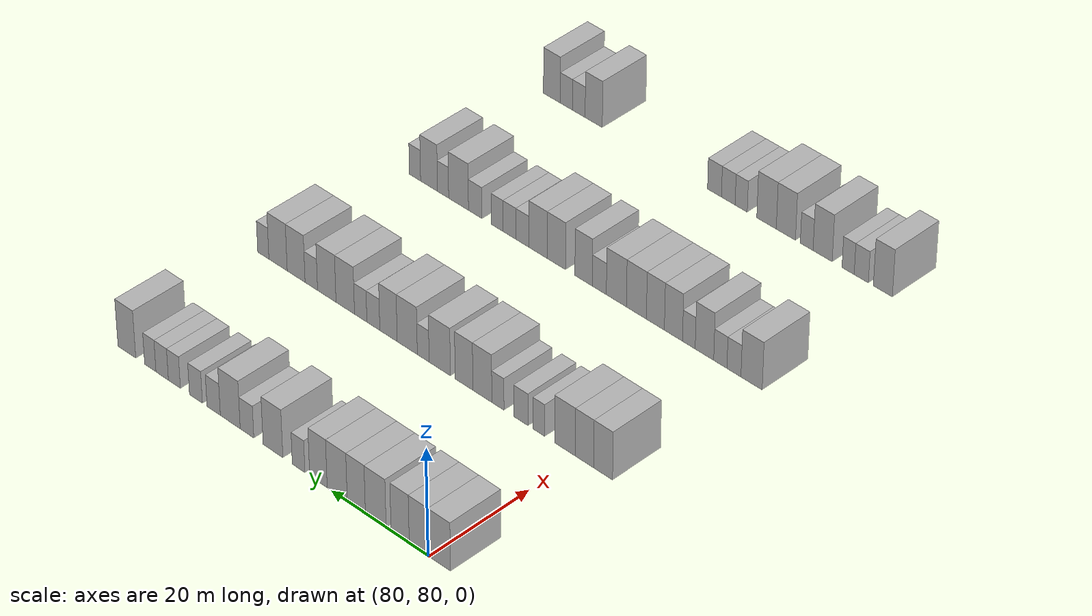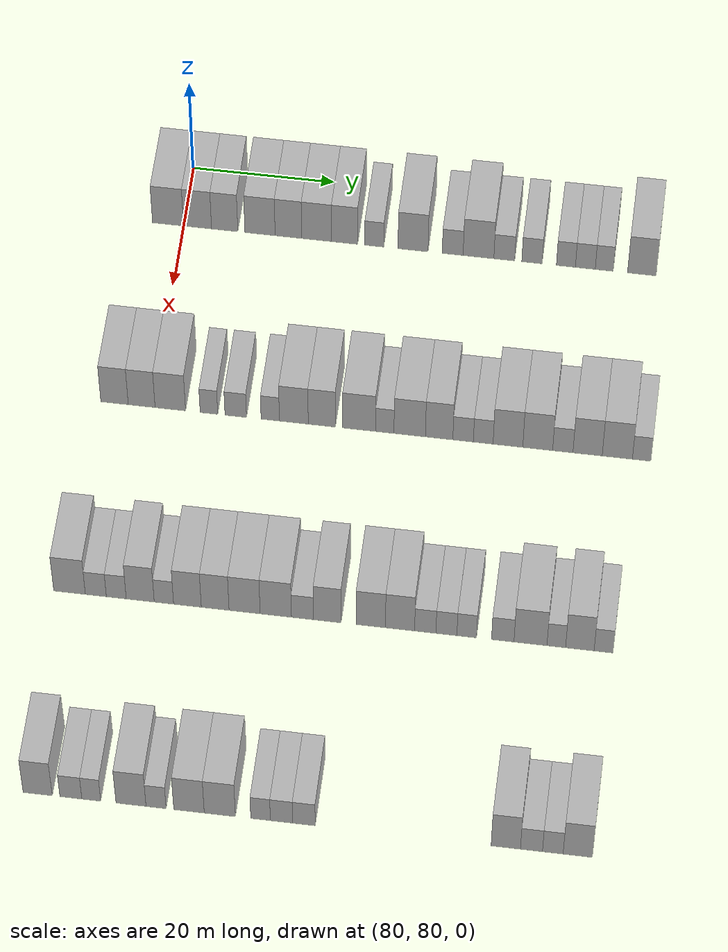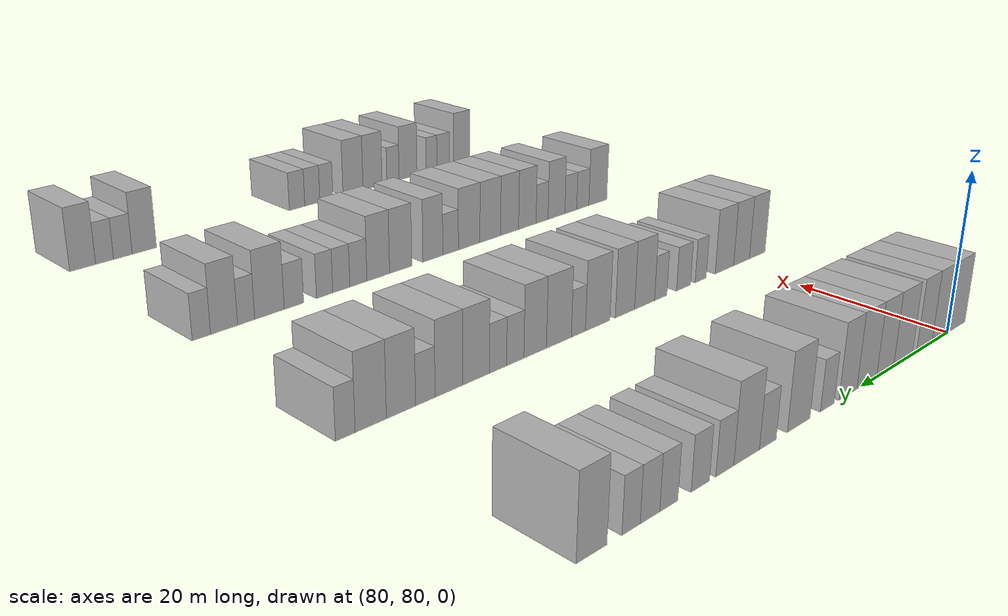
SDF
<sdf version="1.6">
 <world name="default">
  <model name="building_584">
   <static>1</static>
   <pose>85.0000 77.8162 0 0.000000 0.000000 0.000000</pose>
   <link name="link">
    <pose>0 0 4.50 0 0 0</pose>
    <collision name="collision"><geometry><box><size>10.0000 4.3735 9.0000</size></box></geometry></collision>
    <visual name="visual">
     <cast_shadows>0</cast_shadows>
     <geometry><box><size>10.0000 4.3735 9.0000</size></box></geometry>
     <material>
      <script>
       <uri>model://HANNAS_wall/materials/scripts</uri>
       <uri>model://HANNAS_wall/materials/textures</uri>
       <name>vrc/HANNAS_wall</name>
      </script>
     </material>
    </visual>
   </link>
  </model>
  <model name="building_585">
   <static>1</static>
   <pose>85.0000 81.9807 0 0.000000 0.000000 0.000000</pose>
   <link name="link">
    <pose>0 0 4.50 0 0 0</pose>
    <collision name="collision"><geometry><box><size>10.0000 3.9555 9.0000</size></box></geometry></collision>
    <visual name="visual">
     <cast_shadows>0</cast_shadows>
     <geometry><box><size>10.0000 3.9555 9.0000</size></box></geometry>
     <material>
      <script>
       <uri>model://HANNAS_wall/materials/scripts</uri>
       <uri>model://HANNAS_wall/materials/textures</uri>
       <name>vrc/HANNAS_wall</name>
      </script>
     </material>
    </visual>
   </link>
  </model>
  <model name="building_586">
   <static>1</static>
   <pose>85.0000 85.8132 0 0.000000 0.000000 0.000000</pose>
   <link name="link">
    <pose>0 0 4.50 0 0 0</pose>
    <collision name="collision"><geometry><box><size>10.0000 3.7095 9.0000</size></box></geometry></collision>
    <visual name="visual">
     <cast_shadows>0</cast_shadows>
     <geometry><box><size>10.0000 3.7095 9.0000</size></box></geometry>
     <material>
      <script>
       <uri>model://HANNAS_wall/materials/scripts</uri>
       <uri>model://HANNAS_wall/materials/textures</uri>
       <name>vrc/HANNAS_wall</name>
      </script>
     </material>
    </visual>
   </link>
  </model>
  <model name="building_587">
   <static>1</static>
   <pose>85.0000 90.7983 0 0.000000 0.000000 0.000000</pose>
   <link name="link">
    <pose>0 0 4.50 0 0 0</pose>
    <collision name="collision"><geometry><box><size>10.0000 4.2608 9.0000</size></box></geometry></collision>
    <visual name="visual">
     <cast_shadows>0</cast_shadows>
     <geometry><box><size>10.0000 4.2608 9.0000</size></box></geometry>
     <material>
      <script>
       <uri>model://HANNAS_wall/materials/scripts</uri>
       <uri>model://HANNAS_wall/materials/textures</uri>
       <name>vrc/HANNAS_wall</name>
      </script>
     </material>
    </visual>
   </link>
  </model>
  <model name="building_588">
   <static>1</static>
   <pose>85.0000 94.8040 0 0.000000 0.000000 0.000000</pose>
   <link name="link">
    <pose>0 0 4.50 0 0 0</pose>
    <collision name="collision"><geometry><box><size>10.0000 3.7506 9.0000</size></box></geometry></collision>
    <visual name="visual">
     <cast_shadows>0</cast_shadows>
     <geometry><box><size>10.0000 3.7506 9.0000</size></box></geometry>
     <material>
      <script>
       <uri>model://HANNAS_wall/materials/scripts</uri>
       <uri>model://HANNAS_wall/materials/textures</uri>
       <name>vrc/HANNAS_wall</name>
      </script>
     </material>
    </visual>
   </link>
  </model>
  <model name="building_589">
   <static>1</static>
   <pose>85.0000 98.7727 0 0.000000 0.000000 0.000000</pose>
   <link name="link">
    <pose>0 0 4.50 0 0 0</pose>
    <collision name="collision"><geometry><box><size>10.0000 4.1867 9.0000</size></box></geometry></collision>
    <visual name="visual">
     <cast_shadows>0</cast_shadows>
     <geometry><box><size>10.0000 4.1867 9.0000</size></box></geometry>
     <material>
      <script>
       <uri>model://HANNAS_wall/materials/scripts</uri>
       <uri>model://HANNAS_wall/materials/textures</uri>
       <name>vrc/HANNAS_wall</name>
      </script>
     </material>
    </visual>
   </link>
  </model>
  <model name="building_590">
   <static>1</static>
   <pose>85.0000 102.7034 0 0.000000 0.000000 0.000000</pose>
   <link name="link">
    <pose>0 0 4.50 0 0 0</pose>
    <collision name="collision"><geometry><box><size>10.0000 3.6746 9.0000</size></box></geometry></collision>
    <visual name="visual">
     <cast_shadows>0</cast_shadows>
     <geometry><box><size>10.0000 3.6746 9.0000</size></box></geometry>
     <material>
      <script>
       <uri>model://HANNAS_wall/materials/scripts</uri>
       <uri>model://HANNAS_wall/materials/textures</uri>
       <name>vrc/HANNAS_wall</name>
      </script>
     </material>
    </visual>
   </link>
  </model>
  <model name="building_591">
   <static>1</static>
   <pose>85.0000 106.8733 0 0.000000 0.000000 0.000000</pose>
   <link name="link">
    <pose>0 0 3.00 0 0 0</pose>
    <collision name="collision"><geometry><box><size>10.0000 2.6653 6.0000</size></box></geometry></collision>
    <visual name="visual">
     <cast_shadows>0</cast_shadows>
     <geometry><box><size>10.0000 2.6653 6.0000</size></box></geometry>
     <material>
      <script>
       <uri>model://HANNAS_wall/materials/scripts</uri>
       <uri>model://HANNAS_wall/materials/textures</uri>
       <name>vrc/HANNAS_wall</name>
      </script>
     </material>
    </visual>
   </link>
  </model>
  <model name="building_592">
   <static>1</static>
   <pose>85.0000 112.3079 0 0.000000 0.000000 0.000000</pose>
   <link name="link">
    <pose>0 0 4.50 0 0 0</pose>
    <collision name="collision"><geometry><box><size>10.0000 4.2038 9.0000</size></box></geometry></collision>
    <visual name="visual">
     <cast_shadows>0</cast_shadows>
     <geometry><box><size>10.0000 4.2038 9.0000</size></box></geometry>
     <material>
      <script>
       <uri>model://HANNAS_wall/materials/scripts</uri>
       <uri>model://HANNAS_wall/materials/textures</uri>
       <name>vrc/HANNAS_wall</name>
      </script>
     </material>
    </visual>
   </link>
  </model>
  <model name="building_593">
   <static>1</static>
   <pose>85.0000 117.8714 0 0.000000 0.000000 0.000000</pose>
   <link name="link">
    <pose>0 0 3.00 0 0 0</pose>
    <collision name="collision"><geometry><box><size>10.0000 2.9232 6.0000</size></box></geometry></collision>
    <visual name="visual">
     <cast_shadows>0</cast_shadows>
     <geometry><box><size>10.0000 2.9232 6.0000</size></box></geometry>
     <material>
      <script>
       <uri>model://HANNAS_wall/materials/scripts</uri>
       <uri>model://HANNAS_wall/materials/textures</uri>
       <name>vrc/HANNAS_wall</name>
      </script>
     </material>
    </visual>
   </link>
  </model>
  <model name="building_594">
   <static>1</static>
   <pose>85.0000 121.4868 0 0.000000 0.000000 0.000000</pose>
   <link name="link">
    <pose>0 0 4.50 0 0 0</pose>
    <collision name="collision"><geometry><box><size>10.0000 4.3075 9.0000</size></box></geometry></collision>
    <visual name="visual">
     <cast_shadows>0</cast_shadows>
     <geometry><box><size>10.0000 4.3075 9.0000</size></box></geometry>
     <material>
      <script>
       <uri>model://HANNAS_wall/materials/scripts</uri>
       <uri>model://HANNAS_wall/materials/textures</uri>
       <name>vrc/HANNAS_wall</name>
      </script>
     </material>
    </visual>
   </link>
  </model>
  <model name="building_595">
   <static>1</static>
   <pose>85.0000 125.0924 0 0.000000 0.000000 0.000000</pose>
   <link name="link">
    <pose>0 0 3.00 0 0 0</pose>
    <collision name="collision"><geometry><box><size>10.0000 2.9038 6.0000</size></box></geometry></collision>
    <visual name="visual">
     <cast_shadows>0</cast_shadows>
     <geometry><box><size>10.0000 2.9038 6.0000</size></box></geometry>
     <material>
      <script>
       <uri>model://HANNAS_wall/materials/scripts</uri>
       <uri>model://HANNAS_wall/materials/textures</uri>
       <name>vrc/HANNAS_wall</name>
      </script>
     </material>
    </visual>
   </link>
  </model>
  <model name="building_596">
   <static>1</static>
   <pose>85.0000 128.9632 0 0.000000 0.000000 0.000000</pose>
   <link name="link">
    <pose>0 0 3.00 0 0 0</pose>
    <collision name="collision"><geometry><box><size>10.0000 2.8377 6.0000</size></box></geometry></collision>
    <visual name="visual">
     <cast_shadows>0</cast_shadows>
     <geometry><box><size>10.0000 2.8377 6.0000</size></box></geometry>
     <material>
      <script>
       <uri>model://HANNAS_wall/materials/scripts</uri>
       <uri>model://HANNAS_wall/materials/textures</uri>
       <name>vrc/HANNAS_wall</name>
      </script>
     </material>
    </visual>
   </link>
  </model>
  <model name="building_597">
   <static>1</static>
   <pose>85.0000 133.7087 0 0.000000 0.000000 0.000000</pose>
   <link name="link">
    <pose>0 0 3.00 0 0 0</pose>
    <collision name="collision"><geometry><box><size>10.0000 2.6532 6.0000</size></box></geometry></collision>
    <visual name="visual">
     <cast_shadows>0</cast_shadows>
     <geometry><box><size>10.0000 2.6532 6.0000</size></box></geometry>
     <material>
      <script>
       <uri>model://HANNAS_wall/materials/scripts</uri>
       <uri>model://HANNAS_wall/materials/textures</uri>
       <name>vrc/HANNAS_wall</name>
      </script>
     </material>
    </visual>
   </link>
  </model>
  <model name="building_598">
   <static>1</static>
   <pose>85.0000 136.4201 0 0.000000 0.000000 0.000000</pose>
   <link name="link">
    <pose>0 0 3.00 0 0 0</pose>
    <collision name="collision"><geometry><box><size>10.0000 2.7697 6.0000</size></box></geometry></collision>
    <visual name="visual">
     <cast_shadows>0</cast_shadows>
     <geometry><box><size>10.0000 2.7697 6.0000</size></box></geometry>
     <material>
      <script>
       <uri>model://HANNAS_wall/materials/scripts</uri>
       <uri>model://HANNAS_wall/materials/textures</uri>
       <name>vrc/HANNAS_wall</name>
      </script>
     </material>
    </visual>
   </link>
  </model>
  <model name="building_599">
   <static>1</static>
   <pose>85.0000 139.0581 0 0.000000 0.000000 0.000000</pose>
   <link name="link">
    <pose>0 0 3.00 0 0 0</pose>
    <collision name="collision"><geometry><box><size>10.0000 2.5061 6.0000</size></box></geometry></collision>
    <visual name="visual">
     <cast_shadows>0</cast_shadows>
     <geometry><box><size>10.0000 2.5061 6.0000</size></box></geometry>
     <material>
      <script>
       <uri>model://HANNAS_wall/materials/scripts</uri>
       <uri>model://HANNAS_wall/materials/textures</uri>
       <name>vrc/HANNAS_wall</name>
      </script>
     </material>
    </visual>
   </link>
  </model>
  <model name="building_600">
   <static>1</static>
   <pose>85.0000 144.2989 0 0.000000 0.000000 0.000000</pose>
   <link name="link">
    <pose>0 0 4.50 0 0 0</pose>
    <collision name="collision"><geometry><box><size>10.0000 3.9755 9.0000</size></box></geometry></collision>
    <visual name="visual">
     <cast_shadows>0</cast_shadows>
     <geometry><box><size>10.0000 3.9755 9.0000</size></box></geometry>
     <material>
      <script>
       <uri>model://HANNAS_wall/materials/scripts</uri>
       <uri>model://HANNAS_wall/materials/textures</uri>
       <name>vrc/HANNAS_wall</name>
      </script>
     </material>
    </visual>
   </link>
  </model>
  <model name="building_821">
   <static>1</static>
   <pose>115.0000 74.9214 0 0.000000 0.000000 0.000000</pose>
   <link name="link">
    <pose>0 0 4.50 0 0 0</pose>
    <collision name="collision"><geometry><box><size>10.0000 3.7750 9.0000</size></box></geometry></collision>
    <visual name="visual">
     <cast_shadows>0</cast_shadows>
     <geometry><box><size>10.0000 3.7750 9.0000</size></box></geometry>
     <material>
      <script>
       <uri>model://HANNAS_wall/materials/scripts</uri>
       <uri>model://HANNAS_wall/materials/textures</uri>
       <name>vrc/HANNAS_wall</name>
      </script>
     </material>
    </visual>
   </link>
  </model>
  <model name="building_822">
   <static>1</static>
   <pose>115.0000 78.6602 0 0.000000 0.000000 0.000000</pose>
   <link name="link">
    <pose>0 0 4.50 0 0 0</pose>
    <collision name="collision"><geometry><box><size>10.0000 3.7027 9.0000</size></box></geometry></collision>
    <visual name="visual">
     <cast_shadows>0</cast_shadows>
     <geometry><box><size>10.0000 3.7027 9.0000</size></box></geometry>
     <material>
      <script>
       <uri>model://HANNAS_wall/materials/scripts</uri>
       <uri>model://HANNAS_wall/materials/textures</uri>
       <name>vrc/HANNAS_wall</name>
      </script>
     </material>
    </visual>
   </link>
  </model>
  <model name="building_823">
   <static>1</static>
   <pose>115.0000 82.6124 0 0.000000 0.000000 0.000000</pose>
   <link name="link">
    <pose>0 0 4.50 0 0 0</pose>
    <collision name="collision"><geometry><box><size>10.0000 4.2018 9.0000</size></box></geometry></collision>
    <visual name="visual">
     <cast_shadows>0</cast_shadows>
     <geometry><box><size>10.0000 4.2018 9.0000</size></box></geometry>
     <material>
      <script>
       <uri>model://HANNAS_wall/materials/scripts</uri>
       <uri>model://HANNAS_wall/materials/textures</uri>
       <name>vrc/HANNAS_wall</name>
      </script>
     </material>
    </visual>
   </link>
  </model>
  <model name="building_824">
   <static>1</static>
   <pose>115.0000 87.9239 0 0.000000 0.000000 0.000000</pose>
   <link name="link">
    <pose>0 0 3.00 0 0 0</pose>
    <collision name="collision"><geometry><box><size>10.0000 2.4211 6.0000</size></box></geometry></collision>
    <visual name="visual">
     <cast_shadows>0</cast_shadows>
     <geometry><box><size>10.0000 2.4211 6.0000</size></box></geometry>
     <material>
      <script>
       <uri>model://HANNAS_wall/materials/scripts</uri>
       <uri>model://HANNAS_wall/materials/textures</uri>
       <name>vrc/HANNAS_wall</name>
      </script>
     </material>
    </visual>
   </link>
  </model>
  <model name="building_825">
   <static>1</static>
   <pose>115.0000 91.6122 0 0.000000 0.000000 0.000000</pose>
   <link name="link">
    <pose>0 0 3.00 0 0 0</pose>
    <collision name="collision"><geometry><box><size>10.0000 2.9556 6.0000</size></box></geometry></collision>
    <visual name="visual">
     <cast_shadows>0</cast_shadows>
     <geometry><box><size>10.0000 2.9556 6.0000</size></box></geometry>
     <material>
      <script>
       <uri>model://HANNAS_wall/materials/scripts</uri>
       <uri>model://HANNAS_wall/materials/textures</uri>
       <name>vrc/HANNAS_wall</name>
      </script>
     </material>
    </visual>
   </link>
  </model>
  <model name="building_826">
   <static>1</static>
   <pose>115.0000 96.3514 0 0.000000 0.000000 0.000000</pose>
   <link name="link">
    <pose>0 0 3.00 0 0 0</pose>
    <collision name="collision"><geometry><box><size>10.0000 2.5227 6.0000</size></box></geometry></collision>
    <visual name="visual">
     <cast_shadows>0</cast_shadows>
     <geometry><box><size>10.0000 2.5227 6.0000</size></box></geometry>
     <material>
      <script>
       <uri>model://HANNAS_wall/materials/scripts</uri>
       <uri>model://HANNAS_wall/materials/textures</uri>
       <name>vrc/HANNAS_wall</name>
      </script>
     </material>
    </visual>
   </link>
  </model>
  <model name="building_827">
   <static>1</static>
   <pose>115.0000 99.5895 0 0.000000 0.000000 0.000000</pose>
   <link name="link">
    <pose>0 0 4.50 0 0 0</pose>
    <collision name="collision"><geometry><box><size>10.0000 3.9535 9.0000</size></box></geometry></collision>
    <visual name="visual">
     <cast_shadows>0</cast_shadows>
     <geometry><box><size>10.0000 3.9535 9.0000</size></box></geometry>
     <material>
      <script>
       <uri>model://HANNAS_wall/materials/scripts</uri>
       <uri>model://HANNAS_wall/materials/textures</uri>
       <name>vrc/HANNAS_wall</name>
      </script>
     </material>
    </visual>
   </link>
  </model>
  <model name="building_828">
   <static>1</static>
   <pose>115.0000 103.4253 0 0.000000 0.000000 0.000000</pose>
   <link name="link">
    <pose>0 0 4.50 0 0 0</pose>
    <collision name="collision"><geometry><box><size>10.0000 3.7182 9.0000</size></box></geometry></collision>
    <visual name="visual">
     <cast_shadows>0</cast_shadows>
     <geometry><box><size>10.0000 3.7182 9.0000</size></box></geometry>
     <material>
      <script>
       <uri>model://HANNAS_wall/materials/scripts</uri>
       <uri>model://HANNAS_wall/materials/textures</uri>
       <name>vrc/HANNAS_wall</name>
      </script>
     </material>
    </visual>
   </link>
  </model>
  <model name="building_829">
   <static>1</static>
   <pose>115.0000 108.5336 0 0.000000 0.000000 0.000000</pose>
   <link name="link">
    <pose>0 0 4.50 0 0 0</pose>
    <collision name="collision"><geometry><box><size>10.0000 4.4983 9.0000</size></box></geometry></collision>
    <visual name="visual">
     <cast_shadows>0</cast_shadows>
     <geometry><box><size>10.0000 4.4983 9.0000</size></box></geometry>
     <material>
      <script>
       <uri>model://HANNAS_wall/materials/scripts</uri>
       <uri>model://HANNAS_wall/materials/textures</uri>
       <name>vrc/HANNAS_wall</name>
      </script>
     </material>
    </visual>
   </link>
  </model>
  <model name="building_830">
   <static>1</static>
   <pose>115.0000 112.0397 0 0.000000 0.000000 0.000000</pose>
   <link name="link">
    <pose>0 0 3.00 0 0 0</pose>
    <collision name="collision"><geometry><box><size>10.0000 2.5139 6.0000</size></box></geometry></collision>
    <visual name="visual">
     <cast_shadows>0</cast_shadows>
     <geometry><box><size>10.0000 2.5139 6.0000</size></box></geometry>
     <material>
      <script>
       <uri>model://HANNAS_wall/materials/scripts</uri>
       <uri>model://HANNAS_wall/materials/textures</uri>
       <name>vrc/HANNAS_wall</name>
      </script>
     </material>
    </visual>
   </link>
  </model>
  <model name="building_831">
   <static>1</static>
   <pose>115.0000 115.4475 0 0.000000 0.000000 0.000000</pose>
   <link name="link">
    <pose>0 0 4.50 0 0 0</pose>
    <collision name="collision"><geometry><box><size>10.0000 4.3017 9.0000</size></box></geometry></collision>
    <visual name="visual">
     <cast_shadows>0</cast_shadows>
     <geometry><box><size>10.0000 4.3017 9.0000</size></box></geometry>
     <material>
      <script>
       <uri>model://HANNAS_wall/materials/scripts</uri>
       <uri>model://HANNAS_wall/materials/textures</uri>
       <name>vrc/HANNAS_wall</name>
      </script>
     </material>
    </visual>
   </link>
  </model>
  <model name="building_832">
   <static>1</static>
   <pose>115.0000 119.4709 0 0.000000 0.000000 0.000000</pose>
   <link name="link">
    <pose>0 0 4.50 0 0 0</pose>
    <collision name="collision"><geometry><box><size>10.0000 3.7450 9.0000</size></box></geometry></collision>
    <visual name="visual">
     <cast_shadows>0</cast_shadows>
     <geometry><box><size>10.0000 3.7450 9.0000</size></box></geometry>
     <material>
      <script>
       <uri>model://HANNAS_wall/materials/scripts</uri>
       <uri>model://HANNAS_wall/materials/textures</uri>
       <name>vrc/HANNAS_wall</name>
      </script>
     </material>
    </visual>
   </link>
  </model>
  <model name="building_833">
   <static>1</static>
   <pose>115.0000 122.7456 0 0.000000 0.000000 0.000000</pose>
   <link name="link">
    <pose>0 0 3.00 0 0 0</pose>
    <collision name="collision"><geometry><box><size>10.0000 2.8045 6.0000</size></box></geometry></collision>
    <visual name="visual">
     <cast_shadows>0</cast_shadows>
     <geometry><box><size>10.0000 2.8045 6.0000</size></box></geometry>
     <material>
      <script>
       <uri>model://HANNAS_wall/materials/scripts</uri>
       <uri>model://HANNAS_wall/materials/textures</uri>
       <name>vrc/HANNAS_wall</name>
      </script>
     </material>
    </visual>
   </link>
  </model>
  <model name="building_834">
   <static>1</static>
   <pose>115.0000 125.4901 0 0.000000 0.000000 0.000000</pose>
   <link name="link">
    <pose>0 0 3.00 0 0 0</pose>
    <collision name="collision"><geometry><box><size>10.0000 2.6846 6.0000</size></box></geometry></collision>
    <visual name="visual">
     <cast_shadows>0</cast_shadows>
     <geometry><box><size>10.0000 2.6846 6.0000</size></box></geometry>
     <material>
      <script>
       <uri>model://HANNAS_wall/materials/scripts</uri>
       <uri>model://HANNAS_wall/materials/textures</uri>
       <name>vrc/HANNAS_wall</name>
      </script>
     </material>
    </visual>
   </link>
  </model>
  <model name="building_835">
   <static>1</static>
   <pose>115.0000 128.8598 0 0.000000 0.000000 0.000000</pose>
   <link name="link">
    <pose>0 0 4.50 0 0 0</pose>
    <collision name="collision"><geometry><box><size>10.0000 4.0548 9.0000</size></box></geometry></collision>
    <visual name="visual">
     <cast_shadows>0</cast_shadows>
     <geometry><box><size>10.0000 4.0548 9.0000</size></box></geometry>
     <material>
      <script>
       <uri>model://HANNAS_wall/materials/scripts</uri>
       <uri>model://HANNAS_wall/materials/textures</uri>
       <name>vrc/HANNAS_wall</name>
      </script>
     </material>
    </visual>
   </link>
  </model>
  <model name="building_836">
   <static>1</static>
   <pose>115.0000 132.9206 0 0.000000 0.000000 0.000000</pose>
   <link name="link">
    <pose>0 0 4.50 0 0 0</pose>
    <collision name="collision"><geometry><box><size>10.0000 4.0668 9.0000</size></box></geometry></collision>
    <visual name="visual">
     <cast_shadows>0</cast_shadows>
     <geometry><box><size>10.0000 4.0668 9.0000</size></box></geometry>
     <material>
      <script>
       <uri>model://HANNAS_wall/materials/scripts</uri>
       <uri>model://HANNAS_wall/materials/textures</uri>
       <name>vrc/HANNAS_wall</name>
      </script>
     </material>
    </visual>
   </link>
  </model>
  <model name="building_837">
   <static>1</static>
   <pose>115.0000 136.3347 0 0.000000 0.000000 0.000000</pose>
   <link name="link">
    <pose>0 0 3.00 0 0 0</pose>
    <collision name="collision"><geometry><box><size>10.0000 2.7615 6.0000</size></box></geometry></collision>
    <visual name="visual">
     <cast_shadows>0</cast_shadows>
     <geometry><box><size>10.0000 2.7615 6.0000</size></box></geometry>
     <material>
      <script>
       <uri>model://HANNAS_wall/materials/scripts</uri>
       <uri>model://HANNAS_wall/materials/textures</uri>
       <name>vrc/HANNAS_wall</name>
      </script>
     </material>
    </visual>
   </link>
  </model>
  <model name="building_838">
   <static>1</static>
   <pose>115.0000 139.7034 0 0.000000 0.000000 0.000000</pose>
   <link name="link">
    <pose>0 0 4.50 0 0 0</pose>
    <collision name="collision"><geometry><box><size>10.0000 3.9759 9.0000</size></box></geometry></collision>
    <visual name="visual">
     <cast_shadows>0</cast_shadows>
     <geometry><box><size>10.0000 3.9759 9.0000</size></box></geometry>
     <material>
      <script>
       <uri>model://HANNAS_wall/materials/scripts</uri>
       <uri>model://HANNAS_wall/materials/textures</uri>
       <name>vrc/HANNAS_wall</name>
      </script>
     </material>
    </visual>
   </link>
  </model>
  <model name="building_839">
   <static>1</static>
   <pose>115.0000 143.7420 0 0.000000 0.000000 0.000000</pose>
   <link name="link">
    <pose>0 0 4.50 0 0 0</pose>
    <collision name="collision"><geometry><box><size>10.0000 4.1013 9.0000</size></box></geometry></collision>
    <visual name="visual">
     <cast_shadows>0</cast_shadows>
     <geometry><box><size>10.0000 4.1013 9.0000</size></box></geometry>
     <material>
      <script>
       <uri>model://HANNAS_wall/materials/scripts</uri>
       <uri>model://HANNAS_wall/materials/textures</uri>
       <name>vrc/HANNAS_wall</name>
      </script>
     </material>
    </visual>
   </link>
  </model>
  <model name="building_840">
   <static>1</static>
   <pose>115.0000 147.0474 0 0.000000 0.000000 0.000000</pose>
   <link name="link">
    <pose>0 0 3.00 0 0 0</pose>
    <collision name="collision"><geometry><box><size>10.0000 2.5094 6.0000</size></box></geometry></collision>
    <visual name="visual">
     <cast_shadows>0</cast_shadows>
     <geometry><box><size>10.0000 2.5094 6.0000</size></box></geometry>
     <material>
      <script>
       <uri>model://HANNAS_wall/materials/scripts</uri>
       <uri>model://HANNAS_wall/materials/textures</uri>
       <name>vrc/HANNAS_wall</name>
      </script>
     </material>
    </visual>
   </link>
  </model>
  <model name="building_1045">
   <static>1</static>
   <pose>145.0000 73.5482 0 0.000000 0.000000 0.000000</pose>
   <link name="link">
    <pose>0 0 4.50 0 0 0</pose>
    <collision name="collision"><geometry><box><size>10.0000 4.2470 9.0000</size></box></geometry></collision>
    <visual name="visual">
     <cast_shadows>0</cast_shadows>
     <geometry><box><size>10.0000 4.2470 9.0000</size></box></geometry>
     <material>
      <script>
       <uri>model://HANNAS_wall/materials/scripts</uri>
       <uri>model://HANNAS_wall/materials/textures</uri>
       <name>vrc/HANNAS_wall</name>
      </script>
     </material>
    </visual>
   </link>
  </model>
  <model name="building_1046">
   <static>1</static>
   <pose>145.0000 77.0798 0 0.000000 0.000000 0.000000</pose>
   <link name="link">
    <pose>0 0 3.00 0 0 0</pose>
    <collision name="collision"><geometry><box><size>10.0000 2.8163 6.0000</size></box></geometry></collision>
    <visual name="visual">
     <cast_shadows>0</cast_shadows>
     <geometry><box><size>10.0000 2.8163 6.0000</size></box></geometry>
     <material>
      <script>
       <uri>model://HANNAS_wall/materials/scripts</uri>
       <uri>model://HANNAS_wall/materials/textures</uri>
       <name>vrc/HANNAS_wall</name>
      </script>
     </material>
    </visual>
   </link>
  </model>
  <model name="building_1047">
   <static>1</static>
   <pose>145.0000 79.8259 0 0.000000 0.000000 0.000000</pose>
   <link name="link">
    <pose>0 0 3.00 0 0 0</pose>
    <collision name="collision"><geometry><box><size>10.0000 2.6759 6.0000</size></box></geometry></collision>
    <visual name="visual">
     <cast_shadows>0</cast_shadows>
     <geometry><box><size>10.0000 2.6759 6.0000</size></box></geometry>
     <material>
      <script>
       <uri>model://HANNAS_wall/materials/scripts</uri>
       <uri>model://HANNAS_wall/materials/textures</uri>
       <name>vrc/HANNAS_wall</name>
      </script>
     </material>
    </visual>
   </link>
  </model>
  <model name="building_1048">
   <static>1</static>
   <pose>145.0000 83.0430 0 0.000000 0.000000 0.000000</pose>
   <link name="link">
    <pose>0 0 4.50 0 0 0</pose>
    <collision name="collision"><geometry><box><size>10.0000 3.7583 9.0000</size></box></geometry></collision>
    <visual name="visual">
     <cast_shadows>0</cast_shadows>
     <geometry><box><size>10.0000 3.7583 9.0000</size></box></geometry>
     <material>
      <script>
       <uri>model://HANNAS_wall/materials/scripts</uri>
       <uri>model://HANNAS_wall/materials/textures</uri>
       <name>vrc/HANNAS_wall</name>
      </script>
     </material>
    </visual>
   </link>
  </model>
  <model name="building_1049">
   <static>1</static>
   <pose>145.0000 86.2202 0 0.000000 0.000000 0.000000</pose>
   <link name="link">
    <pose>0 0 3.00 0 0 0</pose>
    <collision name="collision"><geometry><box><size>10.0000 2.5959 6.0000</size></box></geometry></collision>
    <visual name="visual">
     <cast_shadows>0</cast_shadows>
     <geometry><box><size>10.0000 2.5959 6.0000</size></box></geometry>
     <material>
      <script>
       <uri>model://HANNAS_wall/materials/scripts</uri>
       <uri>model://HANNAS_wall/materials/textures</uri>
       <name>vrc/HANNAS_wall</name>
      </script>
     </material>
    </visual>
   </link>
  </model>
  <model name="building_1050">
   <static>1</static>
   <pose>145.0000 89.3751 0 0.000000 0.000000 0.000000</pose>
   <link name="link">
    <pose>0 0 4.50 0 0 0</pose>
    <collision name="collision"><geometry><box><size>10.0000 3.7139 9.0000</size></box></geometry></collision>
    <visual name="visual">
     <cast_shadows>0</cast_shadows>
     <geometry><box><size>10.0000 3.7139 9.0000</size></box></geometry>
     <material>
      <script>
       <uri>model://HANNAS_wall/materials/scripts</uri>
       <uri>model://HANNAS_wall/materials/textures</uri>
       <name>vrc/HANNAS_wall</name>
      </script>
     </material>
    </visual>
   </link>
  </model>
  <model name="building_1051">
   <static>1</static>
   <pose>145.0000 93.0910 0 0.000000 0.000000 0.000000</pose>
   <link name="link">
    <pose>0 0 4.50 0 0 0</pose>
    <collision name="collision"><geometry><box><size>10.0000 3.7179 9.0000</size></box></geometry></collision>
    <visual name="visual">
     <cast_shadows>0</cast_shadows>
     <geometry><box><size>10.0000 3.7179 9.0000</size></box></geometry>
     <material>
      <script>
       <uri>model://HANNAS_wall/materials/scripts</uri>
       <uri>model://HANNAS_wall/materials/textures</uri>
       <name>vrc/HANNAS_wall</name>
      </script>
     </material>
    </visual>
   </link>
  </model>
  <model name="building_1052">
   <static>1</static>
   <pose>145.0000 97.0277 0 0.000000 0.000000 0.000000</pose>
   <link name="link">
    <pose>0 0 4.50 0 0 0</pose>
    <collision name="collision"><geometry><box><size>10.0000 4.1555 9.0000</size></box></geometry></collision>
    <visual name="visual">
     <cast_shadows>0</cast_shadows>
     <geometry><box><size>10.0000 4.1555 9.0000</size></box></geometry>
     <material>
      <script>
       <uri>model://HANNAS_wall/materials/scripts</uri>
       <uri>model://HANNAS_wall/materials/textures</uri>
       <name>vrc/HANNAS_wall</name>
      </script>
     </material>
    </visual>
   </link>
  </model>
  <model name="building_1053">
   <static>1</static>
   <pose>145.0000 101.1993 0 0.000000 0.000000 0.000000</pose>
   <link name="link">
    <pose>0 0 4.50 0 0 0</pose>
    <collision name="collision"><geometry><box><size>10.0000 4.1878 9.0000</size></box></geometry></collision>
    <visual name="visual">
     <cast_shadows>0</cast_shadows>
     <geometry><box><size>10.0000 4.1878 9.0000</size></box></geometry>
     <material>
      <script>
       <uri>model://HANNAS_wall/materials/scripts</uri>
       <uri>model://HANNAS_wall/materials/textures</uri>
       <name>vrc/HANNAS_wall</name>
      </script>
     </material>
    </visual>
   </link>
  </model>
  <model name="building_1054">
   <static>1</static>
   <pose>145.0000 104.7681 0 0.000000 0.000000 0.000000</pose>
   <link name="link">
    <pose>0 0 3.00 0 0 0</pose>
    <collision name="collision"><geometry><box><size>10.0000 2.9499 6.0000</size></box></geometry></collision>
    <visual name="visual">
     <cast_shadows>0</cast_shadows>
     <geometry><box><size>10.0000 2.9499 6.0000</size></box></geometry>
     <material>
      <script>
       <uri>model://HANNAS_wall/materials/scripts</uri>
       <uri>model://HANNAS_wall/materials/textures</uri>
       <name>vrc/HANNAS_wall</name>
      </script>
     </material>
    </visual>
   </link>
  </model>
  <model name="building_1055">
   <static>1</static>
   <pose>145.0000 108.0823 0 0.000000 0.000000 0.000000</pose>
   <link name="link">
    <pose>0 0 4.50 0 0 0</pose>
    <collision name="collision"><geometry><box><size>10.0000 3.6786 9.0000</size></box></geometry></collision>
    <visual name="visual">
     <cast_shadows>0</cast_shadows>
     <geometry><box><size>10.0000 3.6786 9.0000</size></box></geometry>
     <material>
      <script>
       <uri>model://HANNAS_wall/materials/scripts</uri>
       <uri>model://HANNAS_wall/materials/textures</uri>
       <name>vrc/HANNAS_wall</name>
      </script>
     </material>
    </visual>
   </link>
  </model>
  <model name="building_1056">
   <static>1</static>
   <pose>145.0000 113.8803 0 0.000000 0.000000 0.000000</pose>
   <link name="link">
    <pose>0 0 4.50 0 0 0</pose>
    <collision name="collision"><geometry><box><size>10.0000 3.9174 9.0000</size></box></geometry></collision>
    <visual name="visual">
     <cast_shadows>0</cast_shadows>
     <geometry><box><size>10.0000 3.9174 9.0000</size></box></geometry>
     <material>
      <script>
       <uri>model://HANNAS_wall/materials/scripts</uri>
       <uri>model://HANNAS_wall/materials/textures</uri>
       <name>vrc/HANNAS_wall</name>
      </script>
     </material>
    </visual>
   </link>
  </model>
  <model name="building_1057">
   <static>1</static>
   <pose>145.0000 117.7782 0 0.000000 0.000000 0.000000</pose>
   <link name="link">
    <pose>0 0 4.50 0 0 0</pose>
    <collision name="collision"><geometry><box><size>10.0000 3.8782 9.0000</size></box></geometry></collision>
    <visual name="visual">
     <cast_shadows>0</cast_shadows>
     <geometry><box><size>10.0000 3.8782 9.0000</size></box></geometry>
     <material>
      <script>
       <uri>model://HANNAS_wall/materials/scripts</uri>
       <uri>model://HANNAS_wall/materials/textures</uri>
       <name>vrc/HANNAS_wall</name>
      </script>
     </material>
    </visual>
   </link>
  </model>
  <model name="building_1058">
   <static>1</static>
   <pose>145.0000 121.1381 0 0.000000 0.000000 0.000000</pose>
   <link name="link">
    <pose>0 0 3.00 0 0 0</pose>
    <collision name="collision"><geometry><box><size>10.0000 2.8417 6.0000</size></box></geometry></collision>
    <visual name="visual">
     <cast_shadows>0</cast_shadows>
     <geometry><box><size>10.0000 2.8417 6.0000</size></box></geometry>
     <material>
      <script>
       <uri>model://HANNAS_wall/materials/scripts</uri>
       <uri>model://HANNAS_wall/materials/textures</uri>
       <name>vrc/HANNAS_wall</name>
      </script>
     </material>
    </visual>
   </link>
  </model>
  <model name="building_1059">
   <static>1</static>
   <pose>145.0000 123.9499 0 0.000000 0.000000 0.000000</pose>
   <link name="link">
    <pose>0 0 3.00 0 0 0</pose>
    <collision name="collision"><geometry><box><size>10.0000 2.7819 6.0000</size></box></geometry></collision>
    <visual name="visual">
     <cast_shadows>0</cast_shadows>
     <geometry><box><size>10.0000 2.7819 6.0000</size></box></geometry>
     <material>
      <script>
       <uri>model://HANNAS_wall/materials/scripts</uri>
       <uri>model://HANNAS_wall/materials/textures</uri>
       <name>vrc/HANNAS_wall</name>
      </script>
     </material>
    </visual>
   </link>
  </model>
  <model name="building_1060">
   <static>1</static>
   <pose>145.0000 126.6426 0 0.000000 0.000000 0.000000</pose>
   <link name="link">
    <pose>0 0 3.00 0 0 0</pose>
    <collision name="collision"><geometry><box><size>10.0000 2.6033 6.0000</size></box></geometry></collision>
    <visual name="visual">
     <cast_shadows>0</cast_shadows>
     <geometry><box><size>10.0000 2.6033 6.0000</size></box></geometry>
     <material>
      <script>
       <uri>model://HANNAS_wall/materials/scripts</uri>
       <uri>model://HANNAS_wall/materials/textures</uri>
       <name>vrc/HANNAS_wall</name>
      </script>
     </material>
    </visual>
   </link>
  </model>
  <model name="building_1061">
   <static>1</static>
   <pose>145.0000 131.4323 0 0.000000 0.000000 0.000000</pose>
   <link name="link">
    <pose>0 0 3.00 0 0 0</pose>
    <collision name="collision"><geometry><box><size>10.0000 2.9761 6.0000</size></box></geometry></collision>
    <visual name="visual">
     <cast_shadows>0</cast_shadows>
     <geometry><box><size>10.0000 2.9761 6.0000</size></box></geometry>
     <material>
      <script>
       <uri>model://HANNAS_wall/materials/scripts</uri>
       <uri>model://HANNAS_wall/materials/textures</uri>
       <name>vrc/HANNAS_wall</name>
      </script>
     </material>
    </visual>
   </link>
  </model>
  <model name="building_1062">
   <static>1</static>
   <pose>145.0000 135.1086 0 0.000000 0.000000 0.000000</pose>
   <link name="link">
    <pose>0 0 4.50 0 0 0</pose>
    <collision name="collision"><geometry><box><size>10.0000 4.3765 9.0000</size></box></geometry></collision>
    <visual name="visual">
     <cast_shadows>0</cast_shadows>
     <geometry><box><size>10.0000 4.3765 9.0000</size></box></geometry>
     <material>
      <script>
       <uri>model://HANNAS_wall/materials/scripts</uri>
       <uri>model://HANNAS_wall/materials/textures</uri>
       <name>vrc/HANNAS_wall</name>
      </script>
     </material>
    </visual>
   </link>
  </model>
  <model name="building_1063">
   <static>1</static>
   <pose>145.0000 138.5309 0 0.000000 0.000000 0.000000</pose>
   <link name="link">
    <pose>0 0 3.00 0 0 0</pose>
    <collision name="collision"><geometry><box><size>10.0000 2.4681 6.0000</size></box></geometry></collision>
    <visual name="visual">
     <cast_shadows>0</cast_shadows>
     <geometry><box><size>10.0000 2.4681 6.0000</size></box></geometry>
     <material>
      <script>
       <uri>model://HANNAS_wall/materials/scripts</uri>
       <uri>model://HANNAS_wall/materials/textures</uri>
       <name>vrc/HANNAS_wall</name>
      </script>
     </material>
    </visual>
   </link>
  </model>
  <model name="building_1064">
   <static>1</static>
   <pose>145.0000 141.6539 0 0.000000 0.000000 0.000000</pose>
   <link name="link">
    <pose>0 0 4.50 0 0 0</pose>
    <collision name="collision"><geometry><box><size>10.0000 3.7779 9.0000</size></box></geometry></collision>
    <visual name="visual">
     <cast_shadows>0</cast_shadows>
     <geometry><box><size>10.0000 3.7779 9.0000</size></box></geometry>
     <material>
      <script>
       <uri>model://HANNAS_wall/materials/scripts</uri>
       <uri>model://HANNAS_wall/materials/textures</uri>
       <name>vrc/HANNAS_wall</name>
      </script>
     </material>
    </visual>
   </link>
  </model>
  <model name="building_1065">
   <static>1</static>
   <pose>145.0000 144.7925 0 0.000000 0.000000 0.000000</pose>
   <link name="link">
    <pose>0 0 3.00 0 0 0</pose>
    <collision name="collision"><geometry><box><size>10.0000 2.4993 6.0000</size></box></geometry></collision>
    <visual name="visual">
     <cast_shadows>0</cast_shadows>
     <geometry><box><size>10.0000 2.4993 6.0000</size></box></geometry>
     <material>
      <script>
       <uri>model://HANNAS_wall/materials/scripts</uri>
       <uri>model://HANNAS_wall/materials/textures</uri>
       <name>vrc/HANNAS_wall</name>
      </script>
     </material>
    </visual>
   </link>
  </model>
  <model name="building_1269">
   <static>1</static>
   <pose>175.0000 74.2173 0 0.000000 0.000000 0.000000</pose>
   <link name="link">
    <pose>0 0 4.50 0 0 0</pose>
    <collision name="collision"><geometry><box><size>10.0000 3.8185 9.0000</size></box></geometry></collision>
    <visual name="visual">
     <cast_shadows>0</cast_shadows>
     <geometry><box><size>10.0000 3.8185 9.0000</size></box></geometry>
     <material>
      <script>
       <uri>model://HANNAS_wall/materials/scripts</uri>
       <uri>model://HANNAS_wall/materials/textures</uri>
       <name>vrc/HANNAS_wall</name>
      </script>
     </material>
    </visual>
   </link>
  </model>
  <model name="building_1270">
   <static>1</static>
   <pose>175.0000 78.5610 0 0.000000 0.000000 0.000000</pose>
   <link name="link">
    <pose>0 0 3.00 0 0 0</pose>
    <collision name="collision"><geometry><box><size>10.0000 2.8689 6.0000</size></box></geometry></collision>
    <visual name="visual">
     <cast_shadows>0</cast_shadows>
     <geometry><box><size>10.0000 2.8689 6.0000</size></box></geometry>
     <material>
      <script>
       <uri>model://HANNAS_wall/materials/scripts</uri>
       <uri>model://HANNAS_wall/materials/textures</uri>
       <name>vrc/HANNAS_wall</name>
      </script>
     </material>
    </visual>
   </link>
  </model>
  <model name="building_1271">
   <static>1</static>
   <pose>175.0000 81.2284 0 0.000000 0.000000 0.000000</pose>
   <link name="link">
    <pose>0 0 3.00 0 0 0</pose>
    <collision name="collision"><geometry><box><size>10.0000 2.4659 6.0000</size></box></geometry></collision>
    <visual name="visual">
     <cast_shadows>0</cast_shadows>
     <geometry><box><size>10.0000 2.4659 6.0000</size></box></geometry>
     <material>
      <script>
       <uri>model://HANNAS_wall/materials/scripts</uri>
       <uri>model://HANNAS_wall/materials/textures</uri>
       <name>vrc/HANNAS_wall</name>
      </script>
     </material>
    </visual>
   </link>
  </model>
  <model name="building_1272">
   <static>1</static>
   <pose>175.0000 86.4195 0 0.000000 0.000000 0.000000</pose>
   <link name="link">
    <pose>0 0 4.50 0 0 0</pose>
    <collision name="collision"><geometry><box><size>10.0000 3.9164 9.0000</size></box></geometry></collision>
    <visual name="visual">
     <cast_shadows>0</cast_shadows>
     <geometry><box><size>10.0000 3.9164 9.0000</size></box></geometry>
     <material>
      <script>
       <uri>model://HANNAS_wall/materials/scripts</uri>
       <uri>model://HANNAS_wall/materials/textures</uri>
       <name>vrc/HANNAS_wall</name>
      </script>
     </material>
    </visual>
   </link>
  </model>
  <model name="building_1273">
   <static>1</static>
   <pose>175.0000 89.6913 0 0.000000 0.000000 0.000000</pose>
   <link name="link">
    <pose>0 0 3.00 0 0 0</pose>
    <collision name="collision"><geometry><box><size>10.0000 2.6271 6.0000</size></box></geometry></collision>
    <visual name="visual">
     <cast_shadows>0</cast_shadows>
     <geometry><box><size>10.0000 2.6271 6.0000</size></box></geometry>
     <material>
      <script>
       <uri>model://HANNAS_wall/materials/scripts</uri>
       <uri>model://HANNAS_wall/materials/textures</uri>
       <name>vrc/HANNAS_wall</name>
      </script>
     </material>
    </visual>
   </link>
  </model>
  <model name="building_1274">
   <static>1</static>
   <pose>175.0000 93.9912 0 0.000000 0.000000 0.000000</pose>
   <link name="link">
    <pose>0 0 4.50 0 0 0</pose>
    <collision name="collision"><geometry><box><size>10.0000 3.9727 9.0000</size></box></geometry></collision>
    <visual name="visual">
     <cast_shadows>0</cast_shadows>
     <geometry><box><size>10.0000 3.9727 9.0000</size></box></geometry>
     <material>
      <script>
       <uri>model://HANNAS_wall/materials/scripts</uri>
       <uri>model://HANNAS_wall/materials/textures</uri>
       <name>vrc/HANNAS_wall</name>
      </script>
     </material>
    </visual>
   </link>
  </model>
  <model name="building_1275">
   <static>1</static>
   <pose>175.0000 98.0067 0 0.000000 0.000000 0.000000</pose>
   <link name="link">
    <pose>0 0 4.50 0 0 0</pose>
    <collision name="collision"><geometry><box><size>10.0000 4.0582 9.0000</size></box></geometry></collision>
    <visual name="visual">
     <cast_shadows>0</cast_shadows>
     <geometry><box><size>10.0000 4.0582 9.0000</size></box></geometry>
     <material>
      <script>
       <uri>model://HANNAS_wall/materials/scripts</uri>
       <uri>model://HANNAS_wall/materials/textures</uri>
       <name>vrc/HANNAS_wall</name>
      </script>
     </material>
    </visual>
   </link>
  </model>
  <model name="building_1276">
   <static>1</static>
   <pose>175.0000 103.3109 0 0.000000 0.000000 0.000000</pose>
   <link name="link">
    <pose>0 0 3.00 0 0 0</pose>
    <collision name="collision"><geometry><box><size>10.0000 2.5503 6.0000</size></box></geometry></collision>
    <visual name="visual">
     <cast_shadows>0</cast_shadows>
     <geometry><box><size>10.0000 2.5503 6.0000</size></box></geometry>
     <material>
      <script>
       <uri>model://HANNAS_wall/materials/scripts</uri>
       <uri>model://HANNAS_wall/materials/textures</uri>
       <name>vrc/HANNAS_wall</name>
      </script>
     </material>
    </visual>
   </link>
  </model>
  <model name="building_1277">
   <static>1</static>
   <pose>175.0000 106.0349 0 0.000000 0.000000 0.000000</pose>
   <link name="link">
    <pose>0 0 3.00 0 0 0</pose>
    <collision name="collision"><geometry><box><size>10.0000 2.8976 6.0000</size></box></geometry></collision>
    <visual name="visual">
     <cast_shadows>0</cast_shadows>
     <geometry><box><size>10.0000 2.8976 6.0000</size></box></geometry>
     <material>
      <script>
       <uri>model://HANNAS_wall/materials/scripts</uri>
       <uri>model://HANNAS_wall/materials/textures</uri>
       <name>vrc/HANNAS_wall</name>
      </script>
     </material>
    </visual>
   </link>
  </model>
  <model name="building_1278">
   <static>1</static>
   <pose>175.0000 108.9516 0 0.000000 0.000000 0.000000</pose>
   <link name="link">
    <pose>0 0 3.00 0 0 0</pose>
    <collision name="collision"><geometry><box><size>10.0000 2.9359 6.0000</size></box></geometry></collision>
    <visual name="visual">
     <cast_shadows>0</cast_shadows>
     <geometry><box><size>10.0000 2.9359 6.0000</size></box></geometry>
     <material>
      <script>
       <uri>model://HANNAS_wall/materials/scripts</uri>
       <uri>model://HANNAS_wall/materials/textures</uri>
       <name>vrc/HANNAS_wall</name>
      </script>
     </material>
    </visual>
   </link>
  </model>
  <model name="building_1279">
   <static>1</static>
   <pose>175.0000 135.0949 0 0.000000 0.000000 0.000000</pose>
   <link name="link">
    <pose>0 0 4.50 0 0 0</pose>
    <collision name="collision"><geometry><box><size>10.0000 3.7836 9.0000</size></box></geometry></collision>
    <visual name="visual">
     <cast_shadows>0</cast_shadows>
     <geometry><box><size>10.0000 3.7836 9.0000</size></box></geometry>
     <material>
      <script>
       <uri>model://HANNAS_wall/materials/scripts</uri>
       <uri>model://HANNAS_wall/materials/textures</uri>
       <name>vrc/HANNAS_wall</name>
      </script>
     </material>
    </visual>
   </link>
  </model>
  <model name="building_1280">
   <static>1</static>
   <pose>175.0000 138.4086 0 0.000000 0.000000 0.000000</pose>
   <link name="link">
    <pose>0 0 3.00 0 0 0</pose>
    <collision name="collision"><geometry><box><size>10.0000 2.8439 6.0000</size></box></geometry></collision>
    <visual name="visual">
     <cast_shadows>0</cast_shadows>
     <geometry><box><size>10.0000 2.8439 6.0000</size></box></geometry>
     <material>
      <script>
       <uri>model://HANNAS_wall/materials/scripts</uri>
       <uri>model://HANNAS_wall/materials/textures</uri>
       <name>vrc/HANNAS_wall</name>
      </script>
     </material>
    </visual>
   </link>
  </model>
  <model name="building_1281">
   <static>1</static>
   <pose>175.0000 141.1634 0 0.000000 0.000000 0.000000</pose>
   <link name="link">
    <pose>0 0 3.00 0 0 0</pose>
    <collision name="collision"><geometry><box><size>10.0000 2.6657 6.0000</size></box></geometry></collision>
    <visual name="visual">
     <cast_shadows>0</cast_shadows>
     <geometry><box><size>10.0000 2.6657 6.0000</size></box></geometry>
     <material>
      <script>
       <uri>model://HANNAS_wall/materials/scripts</uri>
       <uri>model://HANNAS_wall/materials/textures</uri>
       <name>vrc/HANNAS_wall</name>
      </script>
     </material>
    </visual>
   </link>
  </model>
  <model name="building_1282">
   <static>1</static>
   <pose>175.0000 144.3792 0 0.000000 0.000000 0.000000</pose>
   <link name="link">
    <pose>0 0 4.50 0 0 0</pose>
    <collision name="collision"><geometry><box><size>10.0000 3.7658 9.0000</size></box></geometry></collision>
    <visual name="visual">
     <cast_shadows>0</cast_shadows>
     <geometry><box><size>10.0000 3.7658 9.0000</size></box></geometry>
     <material>
      <script>
       <uri>model://HANNAS_wall/materials/scripts</uri>
       <uri>model://HANNAS_wall/materials/textures</uri>
       <name>vrc/HANNAS_wall</name>
      </script>
     </material>
    </visual>
   </link>
  </model>
 </world>
</sdf>
